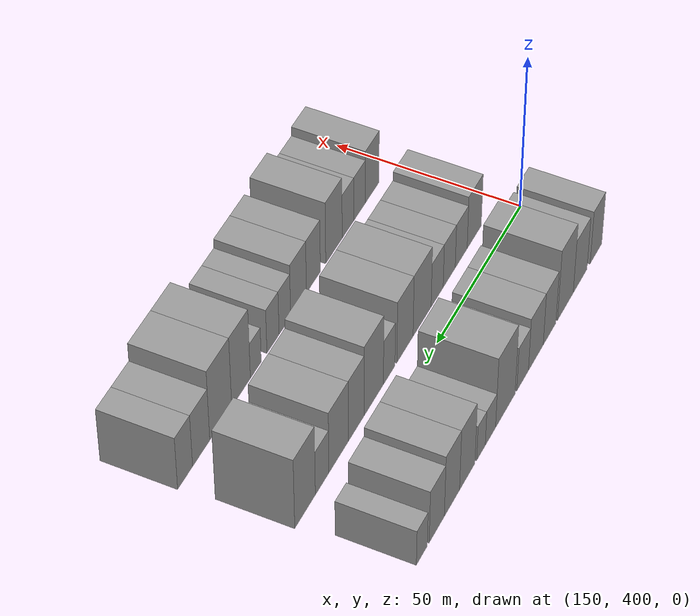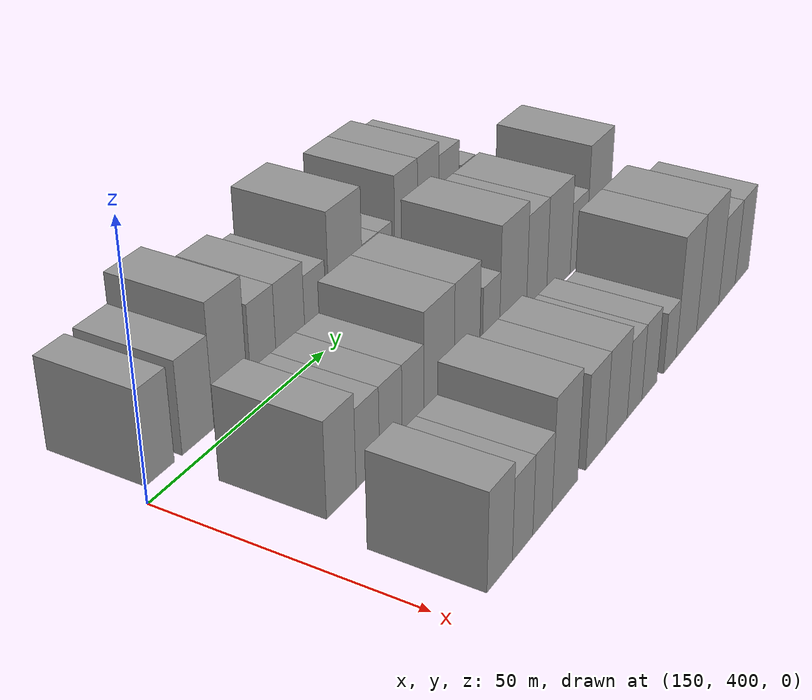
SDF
<sdf version="1.6">
 <world name="default">
  <model name="building_439">
   <static>1</static>
   <pose>137.0000 407.0092 0 0.000000 0.000000 0.000000</pose>
   <link name="link">
    <pose>0 0 9.00 0 0 0</pose>
    <collision name="collision"><geometry><box><size>20.0000 7.4314 18.0000</size></box></geometry></collision>
    <visual name="visual">
     <cast_shadows>0</cast_shadows>
     <geometry><box><size>20.0000 7.4314 18.0000</size></box></geometry>
     <material>
      <script>
       <uri>model://grey_wall/materials/scripts</uri>
       <uri>model://grey_wall/materials/textures</uri>
       <name>vrc/grey_wall</name>
      </script>
     </material>
    </visual>
   </link>
  </model>
  <model name="building_440">
   <static>1</static>
   <pose>137.0000 417.0597 0 0.000000 0.000000 0.000000</pose>
   <link name="link">
    <pose>0 0 9.00 0 0 0</pose>
    <collision name="collision"><geometry><box><size>20.0000 8.6694 18.0000</size></box></geometry></collision>
    <visual name="visual">
     <cast_shadows>0</cast_shadows>
     <geometry><box><size>20.0000 8.6694 18.0000</size></box></geometry>
     <material>
      <script>
       <uri>model://grey_wall/materials/scripts</uri>
       <uri>model://grey_wall/materials/textures</uri>
       <name>vrc/grey_wall</name>
      </script>
     </material>
    </visual>
   </link>
  </model>
  <model name="building_441">
   <static>1</static>
   <pose>137.0000 426.2929 0 0.000000 0.000000 0.000000</pose>
   <link name="link">
    <pose>0 0 12.00 0 0 0</pose>
    <collision name="collision"><geometry><box><size>20.0000 9.7971 24.0000</size></box></geometry></collision>
    <visual name="visual">
     <cast_shadows>0</cast_shadows>
     <geometry><box><size>20.0000 9.7971 24.0000</size></box></geometry>
     <material>
      <script>
       <uri>model://grey_wall/materials/scripts</uri>
       <uri>model://grey_wall/materials/textures</uri>
       <name>vrc/grey_wall</name>
      </script>
     </material>
    </visual>
   </link>
  </model>
  <model name="building_442">
   <static>1</static>
   <pose>137.0000 436.0396 0 0.000000 0.000000 0.000000</pose>
   <link name="link">
    <pose>0 0 9.00 0 0 0</pose>
    <collision name="collision"><geometry><box><size>20.0000 7.6964 18.0000</size></box></geometry></collision>
    <visual name="visual">
     <cast_shadows>0</cast_shadows>
     <geometry><box><size>20.0000 7.6964 18.0000</size></box></geometry>
     <material>
      <script>
       <uri>model://grey_wall/materials/scripts</uri>
       <uri>model://grey_wall/materials/textures</uri>
       <name>vrc/grey_wall</name>
      </script>
     </material>
    </visual>
   </link>
  </model>
  <model name="building_443">
   <static>1</static>
   <pose>137.0000 444.3621 0 0.000000 0.000000 0.000000</pose>
   <link name="link">
    <pose>0 0 9.00 0 0 0</pose>
    <collision name="collision"><geometry><box><size>20.0000 8.9484 18.0000</size></box></geometry></collision>
    <visual name="visual">
     <cast_shadows>0</cast_shadows>
     <geometry><box><size>20.0000 8.9484 18.0000</size></box></geometry>
     <material>
      <script>
       <uri>model://grey_wall/materials/scripts</uri>
       <uri>model://grey_wall/materials/textures</uri>
       <name>vrc/grey_wall</name>
      </script>
     </material>
    </visual>
   </link>
  </model>
  <model name="building_444">
   <static>1</static>
   <pose>137.0000 452.2883 0 0.000000 0.000000 0.000000</pose>
   <link name="link">
    <pose>0 0 7.50 0 0 0</pose>
    <collision name="collision"><geometry><box><size>20.0000 6.9041 15.0000</size></box></geometry></collision>
    <visual name="visual">
     <cast_shadows>0</cast_shadows>
     <geometry><box><size>20.0000 6.9041 15.0000</size></box></geometry>
     <material>
      <script>
       <uri>model://grey_wall/materials/scripts</uri>
       <uri>model://grey_wall/materials/textures</uri>
       <name>vrc/grey_wall</name>
      </script>
     </material>
    </visual>
   </link>
  </model>
  <model name="building_445">
   <static>1</static>
   <pose>137.0000 462.4537 0 0.000000 0.000000 0.000000</pose>
   <link name="link">
    <pose>0 0 12.00 0 0 0</pose>
    <collision name="collision"><geometry><box><size>20.0000 11.4267 24.0000</size></box></geometry></collision>
    <visual name="visual">
     <cast_shadows>0</cast_shadows>
     <geometry><box><size>20.0000 11.4267 24.0000</size></box></geometry>
     <material>
      <script>
       <uri>model://grey_wall/materials/scripts</uri>
       <uri>model://grey_wall/materials/textures</uri>
       <name>vrc/grey_wall</name>
      </script>
     </material>
    </visual>
   </link>
  </model>
  <model name="building_446">
   <static>1</static>
   <pose>137.0000 471.1199 0 0.000000 0.000000 0.000000</pose>
   <link name="link">
    <pose>0 0 6.00 0 0 0</pose>
    <collision name="collision"><geometry><box><size>20.0000 5.9057 12.0000</size></box></geometry></collision>
    <visual name="visual">
     <cast_shadows>0</cast_shadows>
     <geometry><box><size>20.0000 5.9057 12.0000</size></box></geometry>
     <material>
      <script>
       <uri>model://grey_wall/materials/scripts</uri>
       <uri>model://grey_wall/materials/textures</uri>
       <name>vrc/grey_wall</name>
      </script>
     </material>
    </visual>
   </link>
  </model>
  <model name="building_447">
   <static>1</static>
   <pose>137.0000 476.5241 0 0.000000 0.000000 0.000000</pose>
   <link name="link">
    <pose>0 0 6.00 0 0 0</pose>
    <collision name="collision"><geometry><box><size>20.0000 4.9026 12.0000</size></box></geometry></collision>
    <visual name="visual">
     <cast_shadows>0</cast_shadows>
     <geometry><box><size>20.0000 4.9026 12.0000</size></box></geometry>
     <material>
      <script>
       <uri>model://grey_wall/materials/scripts</uri>
       <uri>model://grey_wall/materials/textures</uri>
       <name>vrc/grey_wall</name>
      </script>
     </material>
    </visual>
   </link>
  </model>
  <model name="building_448">
   <static>1</static>
   <pose>137.0000 484.3159 0 0.000000 0.000000 0.000000</pose>
   <link name="link">
    <pose>0 0 10.50 0 0 0</pose>
    <collision name="collision"><geometry><box><size>20.0000 8.6812 21.0000</size></box></geometry></collision>
    <visual name="visual">
     <cast_shadows>0</cast_shadows>
     <geometry><box><size>20.0000 8.6812 21.0000</size></box></geometry>
     <material>
      <script>
       <uri>model://grey_wall/materials/scripts</uri>
       <uri>model://grey_wall/materials/textures</uri>
       <name>vrc/grey_wall</name>
      </script>
     </material>
    </visual>
   </link>
  </model>
  <model name="building_449">
   <static>1</static>
   <pose>137.0000 492.8764 0 0.000000 0.000000 0.000000</pose>
   <link name="link">
    <pose>0 0 10.50 0 0 0</pose>
    <collision name="collision"><geometry><box><size>20.0000 8.4398 21.0000</size></box></geometry></collision>
    <visual name="visual">
     <cast_shadows>0</cast_shadows>
     <geometry><box><size>20.0000 8.4398 21.0000</size></box></geometry>
     <material>
      <script>
       <uri>model://grey_wall/materials/scripts</uri>
       <uri>model://grey_wall/materials/textures</uri>
       <name>vrc/grey_wall</name>
      </script>
     </material>
    </visual>
   </link>
  </model>
  <model name="building_450">
   <static>1</static>
   <pose>137.0000 501.2401 0 0.000000 0.000000 0.000000</pose>
   <link name="link">
    <pose>0 0 9.00 0 0 0</pose>
    <collision name="collision"><geometry><box><size>20.0000 8.2876 18.0000</size></box></geometry></collision>
    <visual name="visual">
     <cast_shadows>0</cast_shadows>
     <geometry><box><size>20.0000 8.2876 18.0000</size></box></geometry>
     <material>
      <script>
       <uri>model://grey_wall/materials/scripts</uri>
       <uri>model://grey_wall/materials/textures</uri>
       <name>vrc/grey_wall</name>
      </script>
     </material>
    </visual>
   </link>
  </model>
  <model name="building_451">
   <static>1</static>
   <pose>137.0000 509.3414 0 0.000000 0.000000 0.000000</pose>
   <link name="link">
    <pose>0 0 6.00 0 0 0</pose>
    <collision name="collision"><geometry><box><size>20.0000 5.9149 12.0000</size></box></geometry></collision>
    <visual name="visual">
     <cast_shadows>0</cast_shadows>
     <geometry><box><size>20.0000 5.9149 12.0000</size></box></geometry>
     <material>
      <script>
       <uri>model://grey_wall/materials/scripts</uri>
       <uri>model://grey_wall/materials/textures</uri>
       <name>vrc/grey_wall</name>
      </script>
     </material>
    </visual>
   </link>
  </model>
  <model name="building_551">
   <static>1</static>
   <pose>166.0000 414.5500 0 0.000000 0.000000 0.000000</pose>
   <link name="link">
    <pose>0 0 9.00 0 0 0</pose>
    <collision name="collision"><geometry><box><size>20.0000 8.5582 18.0000</size></box></geometry></collision>
    <visual name="visual">
     <cast_shadows>0</cast_shadows>
     <geometry><box><size>20.0000 8.5582 18.0000</size></box></geometry>
     <material>
      <script>
       <uri>model://grey_wall/materials/scripts</uri>
       <uri>model://grey_wall/materials/textures</uri>
       <name>vrc/grey_wall</name>
      </script>
     </material>
    </visual>
   </link>
  </model>
  <model name="building_552">
   <static>1</static>
   <pose>166.0000 422.3957 0 0.000000 0.000000 0.000000</pose>
   <link name="link">
    <pose>0 0 7.50 0 0 0</pose>
    <collision name="collision"><geometry><box><size>20.0000 7.1332 15.0000</size></box></geometry></collision>
    <visual name="visual">
     <cast_shadows>0</cast_shadows>
     <geometry><box><size>20.0000 7.1332 15.0000</size></box></geometry>
     <material>
      <script>
       <uri>model://grey_wall/materials/scripts</uri>
       <uri>model://grey_wall/materials/textures</uri>
       <name>vrc/grey_wall</name>
      </script>
     </material>
    </visual>
   </link>
  </model>
  <model name="building_553">
   <static>1</static>
   <pose>166.0000 429.5161 0 0.000000 0.000000 0.000000</pose>
   <link name="link">
    <pose>0 0 7.50 0 0 0</pose>
    <collision name="collision"><geometry><box><size>20.0000 7.1076 15.0000</size></box></geometry></collision>
    <visual name="visual">
     <cast_shadows>0</cast_shadows>
     <geometry><box><size>20.0000 7.1076 15.0000</size></box></geometry>
     <material>
      <script>
       <uri>model://grey_wall/materials/scripts</uri>
       <uri>model://grey_wall/materials/textures</uri>
       <name>vrc/grey_wall</name>
      </script>
     </material>
    </visual>
   </link>
  </model>
  <model name="building_554">
   <static>1</static>
   <pose>166.0000 436.5988 0 0.000000 0.000000 0.000000</pose>
   <link name="link">
    <pose>0 0 7.50 0 0 0</pose>
    <collision name="collision"><geometry><box><size>20.0000 7.0578 15.0000</size></box></geometry></collision>
    <visual name="visual">
     <cast_shadows>0</cast_shadows>
     <geometry><box><size>20.0000 7.0578 15.0000</size></box></geometry>
     <material>
      <script>
       <uri>model://grey_wall/materials/scripts</uri>
       <uri>model://grey_wall/materials/textures</uri>
       <name>vrc/grey_wall</name>
      </script>
     </material>
    </visual>
   </link>
  </model>
  <model name="building_555">
   <static>1</static>
   <pose>166.0000 445.3219 0 0.000000 0.000000 0.000000</pose>
   <link name="link">
    <pose>0 0 10.50 0 0 0</pose>
    <collision name="collision"><geometry><box><size>20.0000 10.3882 21.0000</size></box></geometry></collision>
    <visual name="visual">
     <cast_shadows>0</cast_shadows>
     <geometry><box><size>20.0000 10.3882 21.0000</size></box></geometry>
     <material>
      <script>
       <uri>model://grey_wall/materials/scripts</uri>
       <uri>model://grey_wall/materials/textures</uri>
       <name>vrc/grey_wall</name>
      </script>
     </material>
    </visual>
   </link>
  </model>
  <model name="building_556">
   <static>1</static>
   <pose>166.0000 455.1303 0 0.000000 0.000000 0.000000</pose>
   <link name="link">
    <pose>0 0 10.50 0 0 0</pose>
    <collision name="collision"><geometry><box><size>20.0000 9.2287 21.0000</size></box></geometry></collision>
    <visual name="visual">
     <cast_shadows>0</cast_shadows>
     <geometry><box><size>20.0000 9.2287 21.0000</size></box></geometry>
     <material>
      <script>
       <uri>model://grey_wall/materials/scripts</uri>
       <uri>model://grey_wall/materials/textures</uri>
       <name>vrc/grey_wall</name>
      </script>
     </material>
    </visual>
   </link>
  </model>
  <model name="building_557">
   <static>1</static>
   <pose>166.0000 463.9839 0 0.000000 0.000000 0.000000</pose>
   <link name="link">
    <pose>0 0 7.50 0 0 0</pose>
    <collision name="collision"><geometry><box><size>20.0000 6.4786 15.0000</size></box></geometry></collision>
    <visual name="visual">
     <cast_shadows>0</cast_shadows>
     <geometry><box><size>20.0000 6.4786 15.0000</size></box></geometry>
     <material>
      <script>
       <uri>model://grey_wall/materials/scripts</uri>
       <uri>model://grey_wall/materials/textures</uri>
       <name>vrc/grey_wall</name>
      </script>
     </material>
    </visual>
   </link>
  </model>
  <model name="building_558">
   <static>1</static>
   <pose>166.0000 472.5594 0 0.000000 0.000000 0.000000</pose>
   <link name="link">
    <pose>0 0 12.00 0 0 0</pose>
    <collision name="collision"><geometry><box><size>20.0000 10.6724 24.0000</size></box></geometry></collision>
    <visual name="visual">
     <cast_shadows>0</cast_shadows>
     <geometry><box><size>20.0000 10.6724 24.0000</size></box></geometry>
     <material>
      <script>
       <uri>model://grey_wall/materials/scripts</uri>
       <uri>model://grey_wall/materials/textures</uri>
       <name>vrc/grey_wall</name>
      </script>
     </material>
    </visual>
   </link>
  </model>
  <model name="building_559">
   <static>1</static>
   <pose>166.0000 482.1315 0 0.000000 0.000000 0.000000</pose>
   <link name="link">
    <pose>0 0 10.50 0 0 0</pose>
    <collision name="collision"><geometry><box><size>20.0000 8.4717 21.0000</size></box></geometry></collision>
    <visual name="visual">
     <cast_shadows>0</cast_shadows>
     <geometry><box><size>20.0000 8.4717 21.0000</size></box></geometry>
     <material>
      <script>
       <uri>model://grey_wall/materials/scripts</uri>
       <uri>model://grey_wall/materials/textures</uri>
       <name>vrc/grey_wall</name>
      </script>
     </material>
    </visual>
   </link>
  </model>
  <model name="building_560">
   <static>1</static>
   <pose>166.0000 491.5523 0 0.000000 0.000000 0.000000</pose>
   <link name="link">
    <pose>0 0 10.50 0 0 0</pose>
    <collision name="collision"><geometry><box><size>20.0000 10.3698 21.0000</size></box></geometry></collision>
    <visual name="visual">
     <cast_shadows>0</cast_shadows>
     <geometry><box><size>20.0000 10.3698 21.0000</size></box></geometry>
     <material>
      <script>
       <uri>model://grey_wall/materials/scripts</uri>
       <uri>model://grey_wall/materials/textures</uri>
       <name>vrc/grey_wall</name>
      </script>
     </material>
    </visual>
   </link>
  </model>
  <model name="building_561">
   <static>1</static>
   <pose>166.0000 500.2899 0 0.000000 0.000000 0.000000</pose>
   <link name="link">
    <pose>0 0 7.50 0 0 0</pose>
    <collision name="collision"><geometry><box><size>20.0000 7.1054 15.0000</size></box></geometry></collision>
    <visual name="visual">
     <cast_shadows>0</cast_shadows>
     <geometry><box><size>20.0000 7.1054 15.0000</size></box></geometry>
     <material>
      <script>
       <uri>model://grey_wall/materials/scripts</uri>
       <uri>model://grey_wall/materials/textures</uri>
       <name>vrc/grey_wall</name>
      </script>
     </material>
    </visual>
   </link>
  </model>
  <model name="building_562">
   <static>1</static>
   <pose>166.0000 509.1796 0 0.000000 0.000000 0.000000</pose>
   <link name="link">
    <pose>0 0 12.00 0 0 0</pose>
    <collision name="collision"><geometry><box><size>20.0000 10.6739 24.0000</size></box></geometry></collision>
    <visual name="visual">
     <cast_shadows>0</cast_shadows>
     <geometry><box><size>20.0000 10.6739 24.0000</size></box></geometry>
     <material>
      <script>
       <uri>model://grey_wall/materials/scripts</uri>
       <uri>model://grey_wall/materials/textures</uri>
       <name>vrc/grey_wall</name>
      </script>
     </material>
    </visual>
   </link>
  </model>
  <model name="building_661">
   <static>1</static>
   <pose>195.0000 411.3466 0 0.000000 0.000000 0.000000</pose>
   <link name="link">
    <pose>0 0 9.00 0 0 0</pose>
    <collision name="collision"><geometry><box><size>20.0000 8.0011 18.0000</size></box></geometry></collision>
    <visual name="visual">
     <cast_shadows>0</cast_shadows>
     <geometry><box><size>20.0000 8.0011 18.0000</size></box></geometry>
     <material>
      <script>
       <uri>model://grey_wall/materials/scripts</uri>
       <uri>model://grey_wall/materials/textures</uri>
       <name>vrc/grey_wall</name>
      </script>
     </material>
    </visual>
   </link>
  </model>
  <model name="building_662">
   <static>1</static>
   <pose>195.0000 418.7021 0 0.000000 0.000000 0.000000</pose>
   <link name="link">
    <pose>0 0 7.50 0 0 0</pose>
    <collision name="collision"><geometry><box><size>20.0000 6.7100 15.0000</size></box></geometry></collision>
    <visual name="visual">
     <cast_shadows>0</cast_shadows>
     <geometry><box><size>20.0000 6.7100 15.0000</size></box></geometry>
     <material>
      <script>
       <uri>model://grey_wall/materials/scripts</uri>
       <uri>model://grey_wall/materials/textures</uri>
       <name>vrc/grey_wall</name>
      </script>
     </material>
    </visual>
   </link>
  </model>
  <model name="building_663">
   <static>1</static>
   <pose>195.0000 425.3538 0 0.000000 0.000000 0.000000</pose>
   <link name="link">
    <pose>0 0 7.50 0 0 0</pose>
    <collision name="collision"><geometry><box><size>20.0000 6.5932 15.0000</size></box></geometry></collision>
    <visual name="visual">
     <cast_shadows>0</cast_shadows>
     <geometry><box><size>20.0000 6.5932 15.0000</size></box></geometry>
     <material>
      <script>
       <uri>model://grey_wall/materials/scripts</uri>
       <uri>model://grey_wall/materials/textures</uri>
       <name>vrc/grey_wall</name>
      </script>
     </material>
    </visual>
   </link>
  </model>
  <model name="building_664">
   <static>1</static>
   <pose>195.0000 433.2895 0 0.000000 0.000000 0.000000</pose>
   <link name="link">
    <pose>0 0 10.50 0 0 0</pose>
    <collision name="collision"><geometry><box><size>20.0000 9.2782 21.0000</size></box></geometry></collision>
    <visual name="visual">
     <cast_shadows>0</cast_shadows>
     <geometry><box><size>20.0000 9.2782 21.0000</size></box></geometry>
     <material>
      <script>
       <uri>model://grey_wall/materials/scripts</uri>
       <uri>model://grey_wall/materials/textures</uri>
       <name>vrc/grey_wall</name>
      </script>
     </material>
    </visual>
   </link>
  </model>
  <model name="building_665">
   <static>1</static>
   <pose>195.0000 444.7821 0 0.000000 0.000000 0.000000</pose>
   <link name="link">
    <pose>0 0 9.00 0 0 0</pose>
    <collision name="collision"><geometry><box><size>20.0000 7.7070 18.0000</size></box></geometry></collision>
    <visual name="visual">
     <cast_shadows>0</cast_shadows>
     <geometry><box><size>20.0000 7.7070 18.0000</size></box></geometry>
     <material>
      <script>
       <uri>model://grey_wall/materials/scripts</uri>
       <uri>model://grey_wall/materials/textures</uri>
       <name>vrc/grey_wall</name>
      </script>
     </material>
    </visual>
   </link>
  </model>
  <model name="building_666">
   <static>1</static>
   <pose>195.0000 452.9501 0 0.000000 0.000000 0.000000</pose>
   <link name="link">
    <pose>0 0 9.00 0 0 0</pose>
    <collision name="collision"><geometry><box><size>20.0000 8.6290 18.0000</size></box></geometry></collision>
    <visual name="visual">
     <cast_shadows>0</cast_shadows>
     <geometry><box><size>20.0000 8.6290 18.0000</size></box></geometry>
     <material>
      <script>
       <uri>model://grey_wall/materials/scripts</uri>
       <uri>model://grey_wall/materials/textures</uri>
       <name>vrc/grey_wall</name>
      </script>
     </material>
    </visual>
   </link>
  </model>
  <model name="building_667">
   <static>1</static>
   <pose>195.0000 460.3923 0 0.000000 0.000000 0.000000</pose>
   <link name="link">
    <pose>0 0 7.50 0 0 0</pose>
    <collision name="collision"><geometry><box><size>20.0000 6.2555 15.0000</size></box></geometry></collision>
    <visual name="visual">
     <cast_shadows>0</cast_shadows>
     <geometry><box><size>20.0000 6.2555 15.0000</size></box></geometry>
     <material>
      <script>
       <uri>model://grey_wall/materials/scripts</uri>
       <uri>model://grey_wall/materials/textures</uri>
       <name>vrc/grey_wall</name>
      </script>
     </material>
    </visual>
   </link>
  </model>
  <model name="building_668">
   <static>1</static>
   <pose>195.0000 466.7717 0 0.000000 0.000000 0.000000</pose>
   <link name="link">
    <pose>0 0 7.50 0 0 0</pose>
    <collision name="collision"><geometry><box><size>20.0000 6.5032 15.0000</size></box></geometry></collision>
    <visual name="visual">
     <cast_shadows>0</cast_shadows>
     <geometry><box><size>20.0000 6.5032 15.0000</size></box></geometry>
     <material>
      <script>
       <uri>model://grey_wall/materials/scripts</uri>
       <uri>model://grey_wall/materials/textures</uri>
       <name>vrc/grey_wall</name>
      </script>
     </material>
    </visual>
   </link>
  </model>
  <model name="building_669">
   <static>1</static>
   <pose>195.0000 475.8902 0 0.000000 0.000000 0.000000</pose>
   <link name="link">
    <pose>0 0 6.00 0 0 0</pose>
    <collision name="collision"><geometry><box><size>20.0000 5.7339 12.0000</size></box></geometry></collision>
    <visual name="visual">
     <cast_shadows>0</cast_shadows>
     <geometry><box><size>20.0000 5.7339 12.0000</size></box></geometry>
     <material>
      <script>
       <uri>model://grey_wall/materials/scripts</uri>
       <uri>model://grey_wall/materials/textures</uri>
       <name>vrc/grey_wall</name>
      </script>
     </material>
    </visual>
   </link>
  </model>
  <model name="building_670">
   <static>1</static>
   <pose>195.0000 483.6008 0 0.000000 0.000000 0.000000</pose>
   <link name="link">
    <pose>0 0 12.00 0 0 0</pose>
    <collision name="collision"><geometry><box><size>20.0000 9.6873 24.0000</size></box></geometry></collision>
    <visual name="visual">
     <cast_shadows>0</cast_shadows>
     <geometry><box><size>20.0000 9.6873 24.0000</size></box></geometry>
     <material>
      <script>
       <uri>model://grey_wall/materials/scripts</uri>
       <uri>model://grey_wall/materials/textures</uri>
       <name>vrc/grey_wall</name>
      </script>
     </material>
    </visual>
   </link>
  </model>
  <model name="building_671">
   <static>1</static>
   <pose>195.0000 494.0507 0 0.000000 0.000000 0.000000</pose>
   <link name="link">
    <pose>0 0 12.00 0 0 0</pose>
    <collision name="collision"><geometry><box><size>20.0000 11.2125 24.0000</size></box></geometry></collision>
    <visual name="visual">
     <cast_shadows>0</cast_shadows>
     <geometry><box><size>20.0000 11.2125 24.0000</size></box></geometry>
     <material>
      <script>
       <uri>model://grey_wall/materials/scripts</uri>
       <uri>model://grey_wall/materials/textures</uri>
       <name>vrc/grey_wall</name>
      </script>
     </material>
    </visual>
   </link>
  </model>
  <model name="building_672">
   <static>1</static>
   <pose>195.0000 503.9621 0 0.000000 0.000000 0.000000</pose>
   <link name="link">
    <pose>0 0 9.00 0 0 0</pose>
    <collision name="collision"><geometry><box><size>20.0000 8.6102 18.0000</size></box></geometry></collision>
    <visual name="visual">
     <cast_shadows>0</cast_shadows>
     <geometry><box><size>20.0000 8.6102 18.0000</size></box></geometry>
     <material>
      <script>
       <uri>model://grey_wall/materials/scripts</uri>
       <uri>model://grey_wall/materials/textures</uri>
       <name>vrc/grey_wall</name>
      </script>
     </material>
    </visual>
   </link>
  </model>
  <model name="building_673">
   <static>1</static>
   <pose>195.0000 511.9770 0 0.000000 0.000000 0.000000</pose>
   <link name="link">
    <pose>0 0 9.00 0 0 0</pose>
    <collision name="collision"><geometry><box><size>20.0000 7.4195 18.0000</size></box></geometry></collision>
    <visual name="visual">
     <cast_shadows>0</cast_shadows>
     <geometry><box><size>20.0000 7.4195 18.0000</size></box></geometry>
     <material>
      <script>
       <uri>model://grey_wall/materials/scripts</uri>
       <uri>model://grey_wall/materials/textures</uri>
       <name>vrc/grey_wall</name>
      </script>
     </material>
    </visual>
   </link>
  </model>
 </world>
</sdf>
